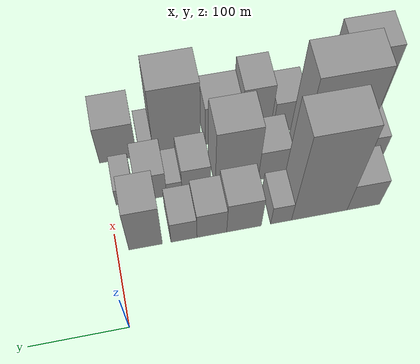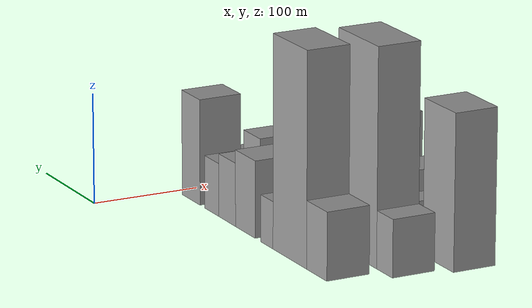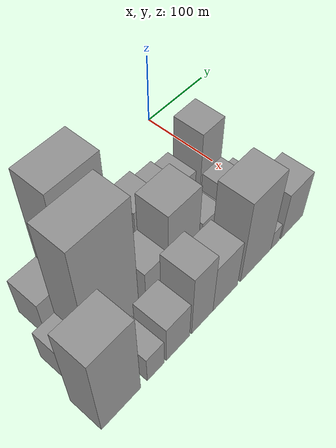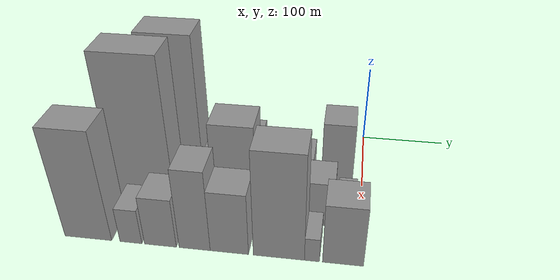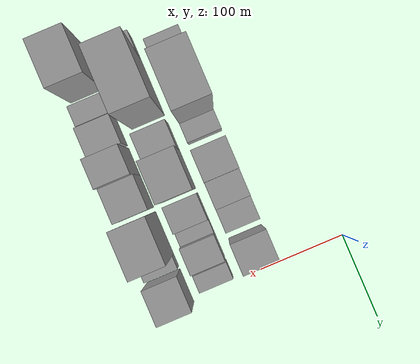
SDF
<sdf version="1.6">
 <world name="default">
  <model name="building_9">
   <static>1</static>
   <pose>100.0000 -261.6188 0 0.000000 0.000000 0.000000</pose>
   <link name="link">
    <pose>0 0 30.00 0 0 0</pose>
    <collision name="collision"><geometry><box><size>40.0000 35.4170 60.0000</size></box></geometry></collision>
    <visual name="visual">
     <cast_shadows>0</cast_shadows>
     <geometry><box><size>40.0000 35.4170 60.0000</size></box></geometry>
     <material>
      <script>
       <uri>model://grey_wall/materials/scripts</uri>
       <uri>model://grey_wall/materials/textures</uri>
       <name>vrc/grey_wall</name>
      </script>
     </material>
    </visual>
   </link>
  </model>
  <model name="building_10">
   <static>1</static>
   <pose>100.0000 -213.8391 0 0.000000 0.000000 0.000000</pose>
   <link name="link">
    <pose>0 0 94.50 0 0 0</pose>
    <collision name="collision"><geometry><box><size>40.0000 60.1424 189.0000</size></box></geometry></collision>
    <visual name="visual">
     <cast_shadows>0</cast_shadows>
     <geometry><box><size>40.0000 60.1424 189.0000</size></box></geometry>
     <material>
      <script>
       <uri>model://grey_wall/materials/scripts</uri>
       <uri>model://grey_wall/materials/textures</uri>
       <name>vrc/grey_wall</name>
      </script>
     </material>
    </visual>
   </link>
  </model>
  <model name="building_11">
   <static>1</static>
   <pose>100.0000 -172.6313 0 0.000000 0.000000 0.000000</pose>
   <link name="link">
    <pose>0 0 21.00 0 0 0</pose>
    <collision name="collision"><geometry><box><size>40.0000 22.2732 42.0000</size></box></geometry></collision>
    <visual name="visual">
     <cast_shadows>0</cast_shadows>
     <geometry><box><size>40.0000 22.2732 42.0000</size></box></geometry>
     <material>
      <script>
       <uri>model://grey_wall/materials/scripts</uri>
       <uri>model://grey_wall/materials/textures</uri>
       <name>vrc/grey_wall</name>
      </script>
     </material>
    </visual>
   </link>
  </model>
  <model name="building_12">
   <static>1</static>
   <pose>100.0000 -133.0729 0 0.000000 0.000000 0.000000</pose>
   <link name="link">
    <pose>0 0 34.50 0 0 0</pose>
    <collision name="collision"><geometry><box><size>40.0000 36.8435 69.0000</size></box></geometry></collision>
    <visual name="visual">
     <cast_shadows>0</cast_shadows>
     <geometry><box><size>40.0000 36.8435 69.0000</size></box></geometry>
     <material>
      <script>
       <uri>model://grey_wall/materials/scripts</uri>
       <uri>model://grey_wall/materials/textures</uri>
       <name>vrc/grey_wall</name>
      </script>
     </material>
    </visual>
   </link>
  </model>
  <model name="building_13">
   <static>1</static>
   <pose>100.0000 -98.9799 0 0.000000 0.000000 0.000000</pose>
   <link name="link">
    <pose>0 0 28.50 0 0 0</pose>
    <collision name="collision"><geometry><box><size>40.0000 31.3427 57.0000</size></box></geometry></collision>
    <visual name="visual">
     <cast_shadows>0</cast_shadows>
     <geometry><box><size>40.0000 31.3427 57.0000</size></box></geometry>
     <material>
      <script>
       <uri>model://grey_wall/materials/scripts</uri>
       <uri>model://grey_wall/materials/textures</uri>
       <name>vrc/grey_wall</name>
      </script>
     </material>
    </visual>
   </link>
  </model>
  <model name="building_14">
   <static>1</static>
   <pose>100.0000 -69.6493 0 0.000000 0.000000 0.000000</pose>
   <link name="link">
    <pose>0 0 24.00 0 0 0</pose>
    <collision name="collision"><geometry><box><size>40.0000 27.3186 48.0000</size></box></geometry></collision>
    <visual name="visual">
     <cast_shadows>0</cast_shadows>
     <geometry><box><size>40.0000 27.3186 48.0000</size></box></geometry>
     <material>
      <script>
       <uri>model://grey_wall/materials/scripts</uri>
       <uri>model://grey_wall/materials/textures</uri>
       <name>vrc/grey_wall</name>
      </script>
     </material>
    </visual>
   </link>
  </model>
  <model name="building_15">
   <static>1</static>
   <pose>100.0000 -29.5580 0 0.000000 0.000000 0.000000</pose>
   <link name="link">
    <pose>0 0 48.00 0 0 0</pose>
    <collision name="collision"><geometry><box><size>40.0000 34.8640 96.0000</size></box></geometry></collision>
    <visual name="visual">
     <cast_shadows>0</cast_shadows>
     <geometry><box><size>40.0000 34.8640 96.0000</size></box></geometry>
     <material>
      <script>
       <uri>model://grey_wall/materials/scripts</uri>
       <uri>model://grey_wall/materials/textures</uri>
       <name>vrc/grey_wall</name>
      </script>
     </material>
    </visual>
   </link>
  </model>
  <model name="building_41">
   <static>1</static>
   <pose>152.0000 -283.6506 0 0.000000 0.000000 0.000000</pose>
   <link name="link">
    <pose>0 0 25.50 0 0 0</pose>
    <collision name="collision"><geometry><box><size>40.0000 27.0461 51.0000</size></box></geometry></collision>
    <visual name="visual">
     <cast_shadows>0</cast_shadows>
     <geometry><box><size>40.0000 27.0461 51.0000</size></box></geometry>
     <material>
      <script>
       <uri>model://grey_wall/materials/scripts</uri>
       <uri>model://grey_wall/materials/textures</uri>
       <name>vrc/grey_wall</name>
      </script>
     </material>
    </visual>
   </link>
  </model>
  <model name="building_42">
   <static>1</static>
   <pose>152.0000 -236.3345 0 0.000000 0.000000 0.000000</pose>
   <link name="link">
    <pose>0 0 96.00 0 0 0</pose>
    <collision name="collision"><geometry><box><size>40.0000 67.5860 192.0000</size></box></geometry></collision>
    <visual name="visual">
     <cast_shadows>0</cast_shadows>
     <geometry><box><size>40.0000 67.5860 192.0000</size></box></geometry>
     <material>
      <script>
       <uri>model://grey_wall/materials/scripts</uri>
       <uri>model://grey_wall/materials/textures</uri>
       <name>vrc/grey_wall</name>
      </script>
     </material>
    </visual>
   </link>
  </model>
  <model name="building_43">
   <static>1</static>
   <pose>152.0000 -176.0911 0 0.000000 0.000000 0.000000</pose>
   <link name="link">
    <pose>0 0 31.50 0 0 0</pose>
    <collision name="collision"><geometry><box><size>40.0000 32.9008 63.0000</size></box></geometry></collision>
    <visual name="visual">
     <cast_shadows>0</cast_shadows>
     <geometry><box><size>40.0000 32.9008 63.0000</size></box></geometry>
     <material>
      <script>
       <uri>model://grey_wall/materials/scripts</uri>
       <uri>model://grey_wall/materials/textures</uri>
       <name>vrc/grey_wall</name>
      </script>
     </material>
    </visual>
   </link>
  </model>
  <model name="building_44">
   <static>1</static>
   <pose>152.0000 -136.3132 0 0.000000 0.000000 0.000000</pose>
   <link name="link">
    <pose>0 0 60.00 0 0 0</pose>
    <collision name="collision"><geometry><box><size>40.0000 46.6549 120.0000</size></box></geometry></collision>
    <visual name="visual">
     <cast_shadows>0</cast_shadows>
     <geometry><box><size>40.0000 46.6549 120.0000</size></box></geometry>
     <material>
      <script>
       <uri>model://grey_wall/materials/scripts</uri>
       <uri>model://grey_wall/materials/textures</uri>
       <name>vrc/grey_wall</name>
      </script>
     </material>
    </visual>
   </link>
  </model>
  <model name="building_45">
   <static>1</static>
   <pose>152.0000 -92.5729 0 0.000000 0.000000 0.000000</pose>
   <link name="link">
    <pose>0 0 27.00 0 0 0</pose>
    <collision name="collision"><geometry><box><size>40.0000 30.8257 54.0000</size></box></geometry></collision>
    <visual name="visual">
     <cast_shadows>0</cast_shadows>
     <geometry><box><size>40.0000 30.8257 54.0000</size></box></geometry>
     <material>
      <script>
       <uri>model://grey_wall/materials/scripts</uri>
       <uri>model://grey_wall/materials/textures</uri>
       <name>vrc/grey_wall</name>
      </script>
     </material>
    </visual>
   </link>
  </model>
  <model name="building_46">
   <static>1</static>
   <pose>152.0000 -68.8843 0 0.000000 0.000000 0.000000</pose>
   <link name="link">
    <pose>0 0 15.00 0 0 0</pose>
    <collision name="collision"><geometry><box><size>40.0000 16.5515 30.0000</size></box></geometry></collision>
    <visual name="visual">
     <cast_shadows>0</cast_shadows>
     <geometry><box><size>40.0000 16.5515 30.0000</size></box></geometry>
     <material>
      <script>
       <uri>model://grey_wall/materials/scripts</uri>
       <uri>model://grey_wall/materials/textures</uri>
       <name>vrc/grey_wall</name>
      </script>
     </material>
    </visual>
   </link>
  </model>
  <model name="building_47">
   <static>1</static>
   <pose>152.0000 -45.0632 0 0.000000 0.000000 0.000000</pose>
   <link name="link">
    <pose>0 0 28.50 0 0 0</pose>
    <collision name="collision"><geometry><box><size>40.0000 31.0908 57.0000</size></box></geometry></collision>
    <visual name="visual">
     <cast_shadows>0</cast_shadows>
     <geometry><box><size>40.0000 31.0908 57.0000</size></box></geometry>
     <material>
      <script>
       <uri>model://grey_wall/materials/scripts</uri>
       <uri>model://grey_wall/materials/textures</uri>
       <name>vrc/grey_wall</name>
      </script>
     </material>
    </visual>
   </link>
  </model>
  <model name="building_48">
   <static>1</static>
   <pose>152.0000 -16.5471 0 0.000000 0.000000 0.000000</pose>
   <link name="link">
    <pose>0 0 18.00 0 0 0</pose>
    <collision name="collision"><geometry><box><size>40.0000 19.9413 36.0000</size></box></geometry></collision>
    <visual name="visual">
     <cast_shadows>0</cast_shadows>
     <geometry><box><size>40.0000 19.9413 36.0000</size></box></geometry>
     <material>
      <script>
       <uri>model://grey_wall/materials/scripts</uri>
       <uri>model://grey_wall/materials/textures</uri>
       <name>vrc/grey_wall</name>
      </script>
     </material>
    </visual>
   </link>
  </model>
  <model name="building_68">
   <static>1</static>
   <pose>204.0000 -282.4832 0 0.000000 0.000000 0.000000</pose>
   <link name="link">
    <pose>0 0 69.00 0 0 0</pose>
    <collision name="collision"><geometry><box><size>40.0000 51.2138 138.0000</size></box></geometry></collision>
    <visual name="visual">
     <cast_shadows>0</cast_shadows>
     <geometry><box><size>40.0000 51.2138 138.0000</size></box></geometry>
     <material>
      <script>
       <uri>model://grey_wall/materials/scripts</uri>
       <uri>model://grey_wall/materials/textures</uri>
       <name>vrc/grey_wall</name>
      </script>
     </material>
    </visual>
   </link>
  </model>
  <model name="building_69">
   <static>1</static>
   <pose>204.0000 -236.0804 0 0.000000 0.000000 0.000000</pose>
   <link name="link">
    <pose>0 0 22.50 0 0 0</pose>
    <collision name="collision"><geometry><box><size>40.0000 23.5918 45.0000</size></box></geometry></collision>
    <visual name="visual">
     <cast_shadows>0</cast_shadows>
     <geometry><box><size>40.0000 23.5918 45.0000</size></box></geometry>
     <material>
      <script>
       <uri>model://grey_wall/materials/scripts</uri>
       <uri>model://grey_wall/materials/textures</uri>
       <name>vrc/grey_wall</name>
      </script>
     </material>
    </visual>
   </link>
  </model>
  <model name="building_70">
   <static>1</static>
   <pose>204.0000 -204.3607 0 0.000000 0.000000 0.000000</pose>
   <link name="link">
    <pose>0 0 31.50 0 0 0</pose>
    <collision name="collision"><geometry><box><size>40.0000 33.8476 63.0000</size></box></geometry></collision>
    <visual name="visual">
     <cast_shadows>0</cast_shadows>
     <geometry><box><size>40.0000 33.8476 63.0000</size></box></geometry>
     <material>
      <script>
       <uri>model://grey_wall/materials/scripts</uri>
       <uri>model://grey_wall/materials/textures</uri>
       <name>vrc/grey_wall</name>
      </script>
     </material>
    </visual>
   </link>
  </model>
  <model name="building_71">
   <static>1</static>
   <pose>204.0000 -168.0877 0 0.000000 0.000000 0.000000</pose>
   <link name="link">
    <pose>0 0 51.00 0 0 0</pose>
    <collision name="collision"><geometry><box><size>40.0000 32.6983 102.0000</size></box></geometry></collision>
    <visual name="visual">
     <cast_shadows>0</cast_shadows>
     <geometry><box><size>40.0000 32.6983 102.0000</size></box></geometry>
     <material>
      <script>
       <uri>model://grey_wall/materials/scripts</uri>
       <uri>model://grey_wall/materials/textures</uri>
       <name>vrc/grey_wall</name>
      </script>
     </material>
    </visual>
   </link>
  </model>
  <model name="building_72">
   <static>1</static>
   <pose>204.0000 -131.8928 0 0.000000 0.000000 0.000000</pose>
   <link name="link">
    <pose>0 0 39.00 0 0 0</pose>
    <collision name="collision"><geometry><box><size>40.0000 39.6916 78.0000</size></box></geometry></collision>
    <visual name="visual">
     <cast_shadows>0</cast_shadows>
     <geometry><box><size>40.0000 39.6916 78.0000</size></box></geometry>
     <material>
      <script>
       <uri>model://grey_wall/materials/scripts</uri>
       <uri>model://grey_wall/materials/textures</uri>
       <name>vrc/grey_wall</name>
      </script>
     </material>
    </visual>
   </link>
  </model>
  <model name="building_73">
   <static>1</static>
   <pose>204.0000 -80.9966 0 0.000000 0.000000 0.000000</pose>
   <link name="link">
    <pose>0 0 66.00 0 0 0</pose>
    <collision name="collision"><geometry><box><size>40.0000 52.1008 132.0000</size></box></geometry></collision>
    <visual name="visual">
     <cast_shadows>0</cast_shadows>
     <geometry><box><size>40.0000 52.1008 132.0000</size></box></geometry>
     <material>
      <script>
       <uri>model://grey_wall/materials/scripts</uri>
       <uri>model://grey_wall/materials/textures</uri>
       <name>vrc/grey_wall</name>
      </script>
     </material>
    </visual>
   </link>
  </model>
  <model name="building_74">
   <static>1</static>
   <pose>204.0000 -47.4094 0 0.000000 0.000000 0.000000</pose>
   <link name="link">
    <pose>0 0 15.00 0 0 0</pose>
    <collision name="collision"><geometry><box><size>40.0000 15.0736 30.0000</size></box></geometry></collision>
    <visual name="visual">
     <cast_shadows>0</cast_shadows>
     <geometry><box><size>40.0000 15.0736 30.0000</size></box></geometry>
     <material>
      <script>
       <uri>model://grey_wall/materials/scripts</uri>
       <uri>model://grey_wall/materials/textures</uri>
       <name>vrc/grey_wall</name>
      </script>
     </material>
    </visual>
   </link>
  </model>
  <model name="building_75">
   <static>1</static>
   <pose>204.0000 -16.4599 0 0.000000 0.000000 0.000000</pose>
   <link name="link">
    <pose>0 0 37.50 0 0 0</pose>
    <collision name="collision"><geometry><box><size>40.0000 40.8256 75.0000</size></box></geometry></collision>
    <visual name="visual">
     <cast_shadows>0</cast_shadows>
     <geometry><box><size>40.0000 40.8256 75.0000</size></box></geometry>
     <material>
      <script>
       <uri>model://grey_wall/materials/scripts</uri>
       <uri>model://grey_wall/materials/textures</uri>
       <name>vrc/grey_wall</name>
      </script>
     </material>
    </visual>
   </link>
  </model>
 </world>
</sdf>
